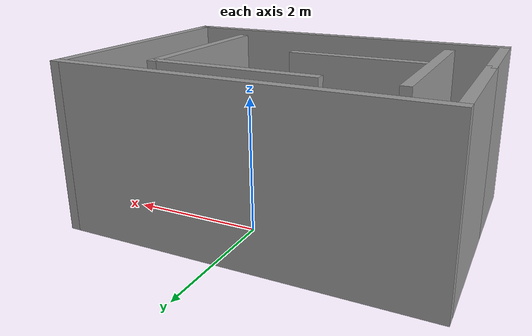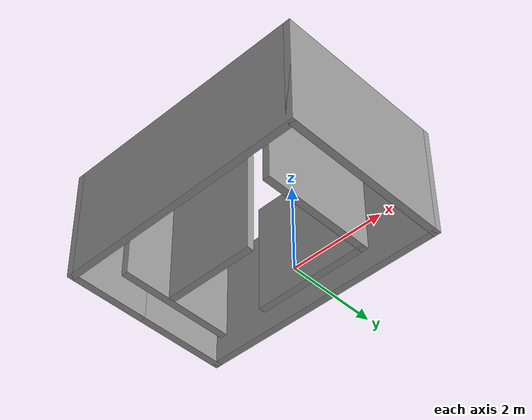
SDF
<?xml version='1.0'?>
<sdf version='1.7'>
  <model name='maze'>
    <pose>-0.305 -0.79 0 0 -0 0</pose>
    <link name='Wall_0'>
      <collision name='Wall_0_Collision'>
        <geometry>
          <box>
            <size>1.75 0.15 2.5</size>
          </box>
        </geometry>
        <pose>0 0 1.25 0 -0 0</pose>
      </collision>
      <visual name='Wall_0_Visual'>
        <pose>0 0 1.25 0 -0 0</pose>
        <geometry>
          <box>
            <size>1.75 0.15 2.5</size>
          </box>
        </geometry>
        <material>
          <script>
            <uri>file://media/materials/scripts/gazebo.material</uri>
            <name>Gazebo/Grey</name>
          </script>
          <ambient>1 1 1 1</ambient>
        </material>
        <meta>
          <layer>0</layer>
        </meta>
      </visual>
      <pose>-2.675 -1 0 0 -0 -1.5708</pose>
    </link>
    <link name='Wall_1'>
      <collision name='Wall_1_Collision'>
        <geometry>
          <box>
            <size>5.5 0.15 2.5</size>
          </box>
        </geometry>
        <pose>0 0 1.25 0 -0 0</pose>
      </collision>
      <visual name='Wall_1_Visual'>
        <pose>0 0 1.25 0 -0 0</pose>
        <geometry>
          <box>
            <size>5.5 0.15 2.5</size>
          </box>
        </geometry>
        <material>
          <script>
            <uri>file://media/materials/scripts/gazebo.material</uri>
            <name>Gazebo/Grey</name>
          </script>
          <ambient>1 1 1 1</ambient>
        </material>
        <meta>
          <layer>0</layer>
        </meta>
      </visual>
      <pose>-0 -1.8 0 0 -0 0</pose>
    </link>
    <link name='Wall_10'>
      <collision name='Wall_10_Collision'>
        <geometry>
          <box>
            <size>2.5 0.15 2.5</size>
          </box>
        </geometry>
        <pose>0 0 1.25 0 -0 0</pose>
      </collision>
      <visual name='Wall_10_Visual'>
        <pose>0 0 1.25 0 -0 0</pose>
        <geometry>
          <box>
            <size>2.5 0.15 2.5</size>
          </box>
        </geometry>
        <material>
          <script>
            <uri>file://media/materials/scripts/gazebo.material</uri>
            <name>Gazebo/Grey</name>
          </script>
          <ambient>1 1 1 1</ambient>
        </material>
        <meta>
          <layer>0</layer>
        </meta>
      </visual>
      <pose>0.33903 1.23085 0 0 -0 0</pose>
    </link>
    <link name='Wall_11'>
      <collision name='Wall_11_Collision'>
        <geometry>
          <box>
            <size>2.5 0.15 2.5</size>
          </box>
        </geometry>
        <pose>0 0 1.25 0 -0 0</pose>
      </collision>
      <visual name='Wall_11_Visual'>
        <pose>0 0 1.25 0 -0 0</pose>
        <geometry>
          <box>
            <size>2.5 0.15 2.5</size>
          </box>
        </geometry>
        <material>
          <script>
            <uri>file://media/materials/scripts/gazebo.material</uri>
            <name>Gazebo/Grey</name>
          </script>
          <ambient>1 1 1 1</ambient>
        </material>
        <meta>
          <layer>0</layer>
        </meta>
      </visual>
      <pose>1.51403 0.055853 0 0 -0 -1.5708</pose>
    </link>
    <link name='Wall_13'>
      <collision name='Wall_13_Collision'>
        <geometry>
          <box>
            <size>2 0.15 2.5</size>
          </box>
        </geometry>
        <pose>0 0 1.25 0 -0 0</pose>
      </collision>
      <visual name='Wall_13_Visual'>
        <pose>0 0 1.25 0 -0 0</pose>
        <geometry>
          <box>
            <size>2 0.15 2.5</size>
          </box>
        </geometry>
        <material>
          <script>
            <uri>file://media/materials/scripts/gazebo.material</uri>
            <name>Gazebo/Grey</name>
          </script>
          <ambient>1 1 1 1</ambient>
        </material>
        <meta>
          <layer>0</layer>
        </meta>
      </visual>
      <pose>-0.883164 -0.125757 0 0 -0 3.14159</pose>
    </link>
    <link name='Wall_3'>
      <collision name='Wall_3_Collision'>
        <geometry>
          <box>
            <size>3.75 0.15 2.5</size>
          </box>
        </geometry>
        <pose>0 0 1.25 0 -0 0</pose>
      </collision>
      <visual name='Wall_3_Visual'>
        <pose>0 0 1.25 0 -0 0</pose>
        <geometry>
          <box>
            <size>3.75 0.15 2.5</size>
          </box>
        </geometry>
        <material>
          <script>
            <uri>file://media/materials/scripts/gazebo.material</uri>
            <name>Gazebo/Grey</name>
          </script>
          <ambient>1 1 1 1</ambient>
        </material>
        <meta>
          <layer>0</layer>
        </meta>
      </visual>
      <pose>2.675 -0 0 0 -0 1.5708</pose>
    </link>
    <link name='Wall_4'>
      <collision name='Wall_4_Collision'>
        <geometry>
          <box>
            <size>5.5 0.15 2.5</size>
          </box>
        </geometry>
        <pose>0 0 1.25 0 -0 0</pose>
      </collision>
      <visual name='Wall_4_Visual'>
        <pose>0 0 1.25 0 -0 0</pose>
        <geometry>
          <box>
            <size>5.5 0.15 2.5</size>
          </box>
        </geometry>
        <material>
          <script>
            <uri>file://media/materials/scripts/gazebo.material</uri>
            <name>Gazebo/Grey</name>
          </script>
          <ambient>1 1 1 1</ambient>
        </material>
        <meta>
          <layer>0</layer>
        </meta>
      </visual>
      <pose>-0 1.8 0 0 -0 3.14159</pose>
    </link>
    <link name='Wall_5'>
      <collision name='Wall_5_Collision'>
        <geometry>
          <box>
            <size>2.15 0.15 2.5</size>
          </box>
        </geometry>
        <pose>0 0 1.25 0 -0 0</pose>
      </collision>
      <visual name='Wall_5_Visual'>
        <pose>0 0 1.25 0 -0 0</pose>
        <geometry>
          <box>
            <size>2.15 0.15 2.5</size>
          </box>
        </geometry>
        <material>
          <script>
            <uri>file://media/materials/scripts/gazebo.material</uri>
            <name>Gazebo/Grey</name>
          </script>
          <ambient>1 1 1 1</ambient>
        </material>
        <meta>
          <layer>0</layer>
        </meta>
      </visual>
      <pose>-2.675 0.8 0 0 -0 -1.5708</pose>
    </link>
    <link name='Wall_8'>
      <collision name='Wall_8_Collision'>
        <geometry>
          <box>
            <size>2.5 0.15 2.5</size>
          </box>
        </geometry>
        <pose>0 0 1.25 0 -0 0</pose>
      </collision>
      <visual name='Wall_8_Visual'>
        <pose>0 0 1.25 0 -0 0</pose>
        <geometry>
          <box>
            <size>2.5 0.15 2.5</size>
          </box>
        </geometry>
        <material>
          <script>
            <uri>file://media/materials/scripts/gazebo.material</uri>
            <name>Gazebo/Grey</name>
          </script>
          <ambient>1 1 1 1</ambient>
        </material>
        <meta>
          <layer>0</layer>
        </meta>
      </visual>
      <pose>-1.95318 0.029253 0 0 -0 -1.5708</pose>
    </link>
    <static>1</static>
  </model>
</sdf>
